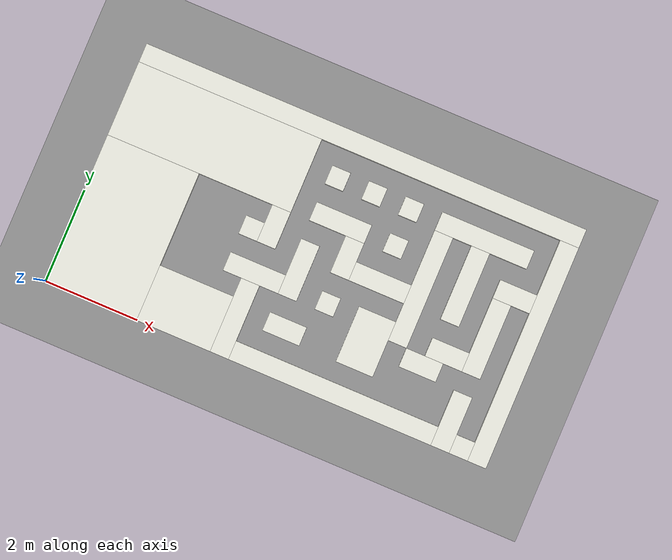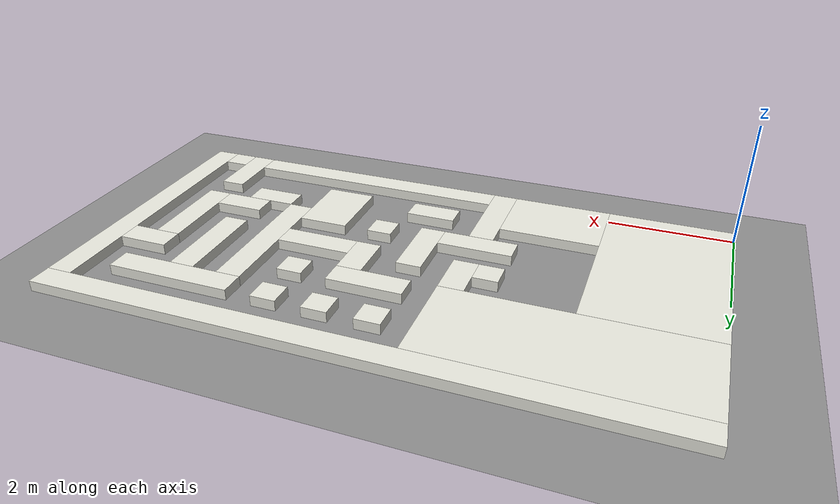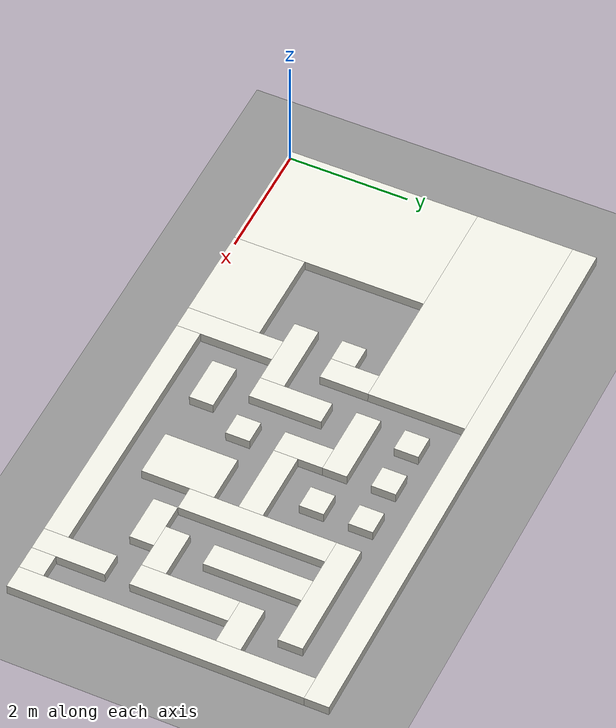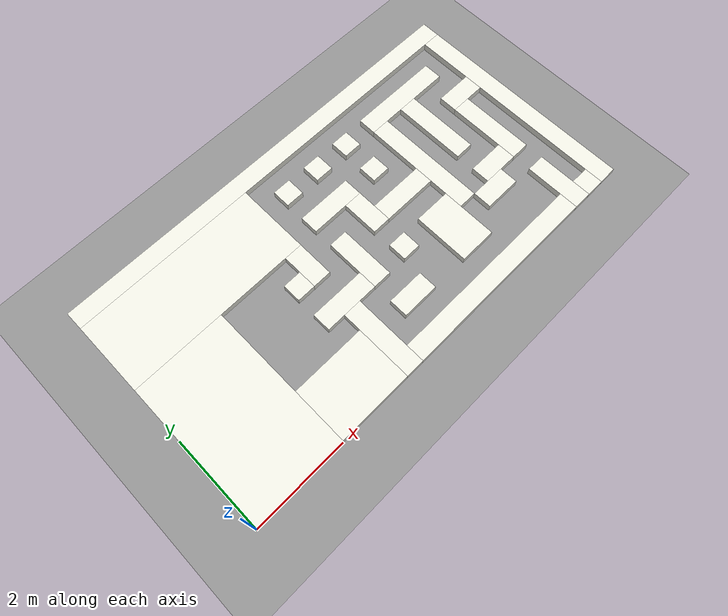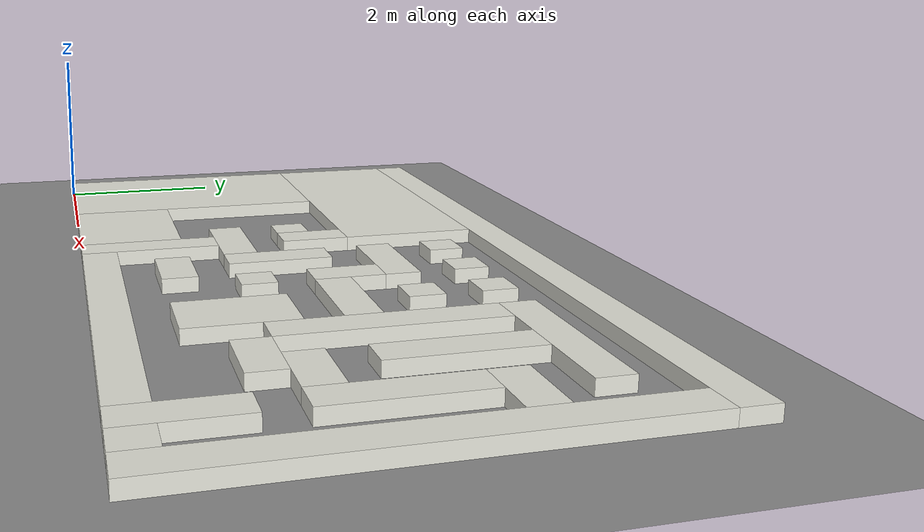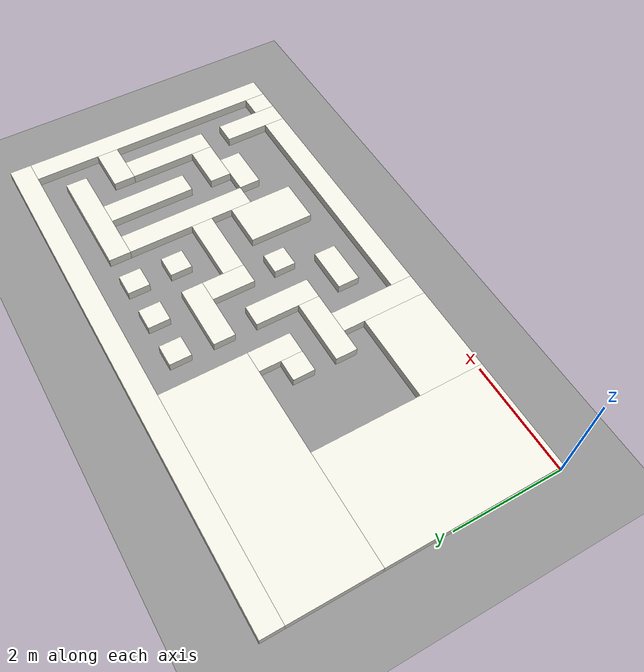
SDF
<sdf version="1.9">
 <world name="ros2_world">
  <model name="ground_plane">
   <static>true</static>
   <link name="link">
    <collision name="collision">
     <geometry><plane><normal>0 0 1</normal><size>30 30</size></plane></geometry>
    </collision>
    <visual name="visual">
     <geometry><plane><normal>0 0 1</normal><size>30 30</size></plane></geometry>
     <material><ambient>0.55 0.55 0.55 1</ambient><diffuse>0.55 0.55 0.55 1</diffuse></material>
    </visual>
   </link>
  </model>
  <model name="paredes">
   <static>true</static>
   <link name="bloque_0">
    <pose>4.8 5 0.085 0 0 0</pose>
    <collision name="colision"><geometry><box><size>9.6 0.4 0.17</size></box></geometry></collision>
    <visual name="visual">
     <geometry><box><size>9.6 0.4 0.17</size></box></geometry>
     <material><ambient>0.9 0.9 0.86 1</ambient><diffuse>0.9 0.9 0.86 1</diffuse></material>
    </visual>
   </link>
   <link name="bloque_1">
    <pose>2 4 0.085 0 0 0</pose>
    <collision name="colision"><geometry><box><size>4 1.6 0.17</size></box></geometry></collision>
    <visual name="visual">
     <geometry><box><size>4 1.6 0.17</size></box></geometry>
     <material><ambient>0.9 0.9 0.86 1</ambient><diffuse>0.9 0.9 0.86 1</diffuse></material>
    </visual>
   </link>
   <link name="bloque_2">
    <pose>9.4 2.4 0.085 0 0 0</pose>
    <collision name="colision"><geometry><box><size>0.4 4.8 0.17</size></box></geometry></collision>
    <visual name="visual">
     <geometry><box><size>0.4 4.8 0.17</size></box></geometry>
     <material><ambient>0.9 0.9 0.86 1</ambient><diffuse>0.9 0.9 0.86 1</diffuse></material>
    </visual>
   </link>
   <link name="bloque_3">
    <pose>4.6 4.2 0.085 0 0 0</pose>
    <collision name="colision"><geometry><box><size>0.4 0.4 0.17</size></box></geometry></collision>
    <visual name="visual">
     <geometry><box><size>0.4 0.4 0.17</size></box></geometry>
     <material><ambient>0.9 0.9 0.86 1</ambient><diffuse>0.9 0.9 0.86 1</diffuse></material>
    </visual>
   </link>
   <link name="bloque_4">
    <pose>5.4 4.2 0.085 0 0 0</pose>
    <collision name="colision"><geometry><box><size>0.4 0.4 0.17</size></box></geometry></collision>
    <visual name="visual">
     <geometry><box><size>0.4 0.4 0.17</size></box></geometry>
     <material><ambient>0.9 0.9 0.86 1</ambient><diffuse>0.9 0.9 0.86 1</diffuse></material>
    </visual>
   </link>
   <link name="bloque_5">
    <pose>6.2 4.2 0.085 0 0 0</pose>
    <collision name="colision"><geometry><box><size>0.4 0.4 0.17</size></box></geometry></collision>
    <visual name="visual">
     <geometry><box><size>0.4 0.4 0.17</size></box></geometry>
     <material><ambient>0.9 0.9 0.86 1</ambient><diffuse>0.9 0.9 0.86 1</diffuse></material>
    </visual>
   </link>
   <link name="bloque_6">
    <pose>7.8 4.2 0.085 0 0 0</pose>
    <collision name="colision"><geometry><box><size>2 0.4 0.17</size></box></geometry></collision>
    <visual name="visual">
     <geometry><box><size>2 0.4 0.17</size></box></geometry>
     <material><ambient>0.9 0.9 0.86 1</ambient><diffuse>0.9 0.9 0.86 1</diffuse></material>
    </visual>
   </link>
   <link name="bloque_7">
    <pose>7 2.8 0.085 0 0 0</pose>
    <collision name="colision"><geometry><box><size>0.4 2.4 0.17</size></box></geometry></collision>
    <visual name="visual">
     <geometry><box><size>0.4 2.4 0.17</size></box></geometry>
     <material><ambient>0.9 0.9 0.86 1</ambient><diffuse>0.9 0.9 0.86 1</diffuse></material>
    </visual>
   </link>
   <link name="bloque_8">
    <pose>7.8 3.2 0.085 0 0 0</pose>
    <collision name="colision"><geometry><box><size>0.4 1.6 0.17</size></box></geometry></collision>
    <visual name="visual">
     <geometry><box><size>0.4 1.6 0.17</size></box></geometry>
     <material><ambient>0.9 0.9 0.86 1</ambient><diffuse>0.9 0.9 0.86 1</diffuse></material>
    </visual>
   </link>
   <link name="bloque_9">
    <pose>5 3.4 0.085 0 0 0</pose>
    <collision name="colision"><geometry><box><size>1.2 0.4 0.17</size></box></geometry></collision>
    <visual name="visual">
     <geometry><box><size>1.2 0.4 0.17</size></box></geometry>
     <material><ambient>0.9 0.9 0.86 1</ambient><diffuse>0.9 0.9 0.86 1</diffuse></material>
    </visual>
   </link>
   <link name="bloque_10">
    <pose>6.2 3.4 0.085 0 0 0</pose>
    <collision name="colision"><geometry><box><size>0.4 0.4 0.17</size></box></geometry></collision>
    <visual name="visual">
     <geometry><box><size>0.4 0.4 0.17</size></box></geometry>
     <material><ambient>0.9 0.9 0.86 1</ambient><diffuse>0.9 0.9 0.86 1</diffuse></material>
    </visual>
   </link>
   <link name="bloque_11">
    <pose>8.8 3.4 0.085 0 0 0</pose>
    <collision name="colision"><geometry><box><size>0.8 0.4 0.17</size></box></geometry></collision>
    <visual name="visual">
     <geometry><box><size>0.8 0.4 0.17</size></box></geometry>
     <material><ambient>0.9 0.9 0.86 1</ambient><diffuse>0.9 0.9 0.86 1</diffuse></material>
    </visual>
   </link>
   <link name="bloque_12">
    <pose>1 1.6 0.085 0 0 0</pose>
    <collision name="colision"><geometry><box><size>2 3.2 0.17</size></box></geometry></collision>
    <visual name="visual">
     <geometry><box><size>2 3.2 0.17</size></box></geometry>
     <material><ambient>0.9 0.9 0.86 1</ambient><diffuse>0.9 0.9 0.86 1</diffuse></material>
    </visual>
   </link>
   <link name="bloque_13">
    <pose>3.8 2.8 0.085 0 0 0</pose>
    <collision name="colision"><geometry><box><size>0.4 0.8 0.17</size></box></geometry></collision>
    <visual name="visual">
     <geometry><box><size>0.4 0.8 0.17</size></box></geometry>
     <material><ambient>0.9 0.9 0.86 1</ambient><diffuse>0.9 0.9 0.86 1</diffuse></material>
    </visual>
   </link>
   <link name="bloque_14">
    <pose>5.4 2.8 0.085 0 0 0</pose>
    <collision name="colision"><geometry><box><size>0.4 0.8 0.17</size></box></geometry></collision>
    <visual name="visual">
     <geometry><box><size>0.4 0.8 0.17</size></box></geometry>
     <material><ambient>0.9 0.9 0.86 1</ambient><diffuse>0.9 0.9 0.86 1</diffuse></material>
    </visual>
   </link>
   <link name="bloque_15">
    <pose>8.6 2.4 0.085 0 0 0</pose>
    <collision name="colision"><geometry><box><size>0.4 1.6 0.17</size></box></geometry></collision>
    <visual name="visual">
     <geometry><box><size>0.4 1.6 0.17</size></box></geometry>
     <material><ambient>0.9 0.9 0.86 1</ambient><diffuse>0.9 0.9 0.86 1</diffuse></material>
    </visual>
   </link>
   <link name="bloque_16">
    <pose>3.4 2.6 0.085 0 0 0</pose>
    <collision name="colision"><geometry><box><size>0.4 0.4 0.17</size></box></geometry></collision>
    <visual name="visual">
     <geometry><box><size>0.4 0.4 0.17</size></box></geometry>
     <material><ambient>0.9 0.9 0.86 1</ambient><diffuse>0.9 0.9 0.86 1</diffuse></material>
    </visual>
   </link>
   <link name="bloque_17">
    <pose>4.6 2.2 0.085 0 0 0</pose>
    <collision name="colision"><geometry><box><size>0.4 1.2 0.17</size></box></geometry></collision>
    <visual name="visual">
     <geometry><box><size>0.4 1.2 0.17</size></box></geometry>
     <material><ambient>0.9 0.9 0.86 1</ambient><diffuse>0.9 0.9 0.86 1</diffuse></material>
    </visual>
   </link>
   <link name="bloque_18">
    <pose>6.2 2.6 0.085 0 0 0</pose>
    <collision name="colision"><geometry><box><size>1.2 0.4 0.17</size></box></geometry></collision>
    <visual name="visual">
     <geometry><box><size>1.2 0.4 0.17</size></box></geometry>
     <material><ambient>0.9 0.9 0.86 1</ambient><diffuse>0.9 0.9 0.86 1</diffuse></material>
    </visual>
   </link>
   <link name="bloque_19">
    <pose>3.8 1.8 0.085 0 0 0</pose>
    <collision name="colision"><geometry><box><size>1.2 0.4 0.17</size></box></geometry></collision>
    <visual name="visual">
     <geometry><box><size>1.2 0.4 0.17</size></box></geometry>
     <material><ambient>0.9 0.9 0.86 1</ambient><diffuse>0.9 0.9 0.86 1</diffuse></material>
    </visual>
   </link>
   <link name="bloque_20">
    <pose>5.4 1.8 0.085 0 0 0</pose>
    <collision name="colision"><geometry><box><size>0.4 0.4 0.17</size></box></geometry></collision>
    <visual name="visual">
     <geometry><box><size>0.4 0.4 0.17</size></box></geometry>
     <material><ambient>0.9 0.9 0.86 1</ambient><diffuse>0.9 0.9 0.86 1</diffuse></material>
    </visual>
   </link>
   <link name="bloque_21">
    <pose>6.4 1.4 0.085 0 0 0</pose>
    <collision name="colision"><geometry><box><size>0.8 1.2 0.17</size></box></geometry></collision>
    <visual name="visual">
     <geometry><box><size>0.8 1.2 0.17</size></box></geometry>
     <material><ambient>0.9 0.9 0.86 1</ambient><diffuse>0.9 0.9 0.86 1</diffuse></material>
    </visual>
   </link>
   <link name="bloque_22">
    <pose>8 1.8 0.085 0 0 0</pose>
    <collision name="colision"><geometry><box><size>0.8 0.4 0.17</size></box></geometry></collision>
    <visual name="visual">
     <geometry><box><size>0.8 0.4 0.17</size></box></geometry>
     <material><ambient>0.9 0.9 0.86 1</ambient><diffuse>0.9 0.9 0.86 1</diffuse></material>
    </visual>
   </link>
   <link name="bloque_23">
    <pose>3.8 0.8 0.085 0 0 0</pose>
    <collision name="colision"><geometry><box><size>0.4 1.6 0.17</size></box></geometry></collision>
    <visual name="visual">
     <geometry><box><size>0.4 1.6 0.17</size></box></geometry>
     <material><ambient>0.9 0.9 0.86 1</ambient><diffuse>0.9 0.9 0.86 1</diffuse></material>
    </visual>
   </link>
   <link name="bloque_24">
    <pose>7.6 1.4 0.085 0 0 0</pose>
    <collision name="colision"><geometry><box><size>0.8 0.4 0.17</size></box></geometry></collision>
    <visual name="visual">
     <geometry><box><size>0.8 0.4 0.17</size></box></geometry>
     <material><ambient>0.9 0.9 0.86 1</ambient><diffuse>0.9 0.9 0.86 1</diffuse></material>
    </visual>
   </link>
   <link name="bloque_25">
    <pose>2.8 0.6 0.085 0 0 0</pose>
    <collision name="colision"><geometry><box><size>1.6 1.2 0.17</size></box></geometry></collision>
    <visual name="visual">
     <geometry><box><size>1.6 1.2 0.17</size></box></geometry>
     <material><ambient>0.9 0.9 0.86 1</ambient><diffuse>0.9 0.9 0.86 1</diffuse></material>
    </visual>
   </link>
   <link name="bloque_26">
    <pose>4.8 1 0.085 0 0 0</pose>
    <collision name="colision"><geometry><box><size>0.8 0.4 0.17</size></box></geometry></collision>
    <visual name="visual">
     <geometry><box><size>0.8 0.4 0.17</size></box></geometry>
     <material><ambient>0.9 0.9 0.86 1</ambient><diffuse>0.9 0.9 0.86 1</diffuse></material>
    </visual>
   </link>
   <link name="bloque_27">
    <pose>8.6 0.6 0.085 0 0 0</pose>
    <collision name="colision"><geometry><box><size>0.4 1.2 0.17</size></box></geometry></collision>
    <visual name="visual">
     <geometry><box><size>0.4 1.2 0.17</size></box></geometry>
     <material><ambient>0.9 0.9 0.86 1</ambient><diffuse>0.9 0.9 0.86 1</diffuse></material>
    </visual>
   </link>
   <link name="bloque_28">
    <pose>6.2 0.2 0.085 0 0 0</pose>
    <collision name="colision"><geometry><box><size>4.4 0.4 0.17</size></box></geometry></collision>
    <visual name="visual">
     <geometry><box><size>4.4 0.4 0.17</size></box></geometry>
     <material><ambient>0.9 0.9 0.86 1</ambient><diffuse>0.9 0.9 0.86 1</diffuse></material>
    </visual>
   </link>
   <link name="bloque_29">
    <pose>9 0.2 0.085 0 0 0</pose>
    <collision name="colision"><geometry><box><size>0.4 0.4 0.17</size></box></geometry></collision>
    <visual name="visual">
     <geometry><box><size>0.4 0.4 0.17</size></box></geometry>
     <material><ambient>0.9 0.9 0.86 1</ambient><diffuse>0.9 0.9 0.86 1</diffuse></material>
    </visual>
   </link>
  </model>
 </world>
</sdf>
